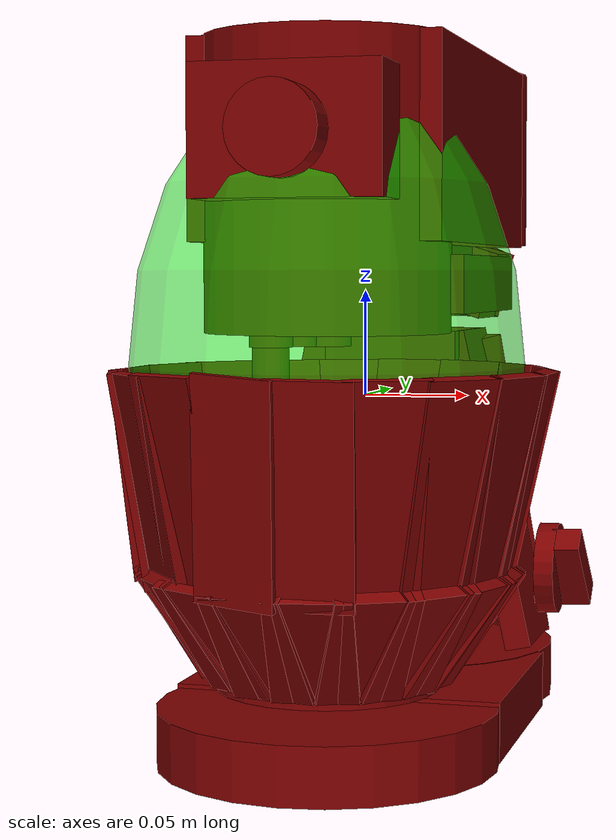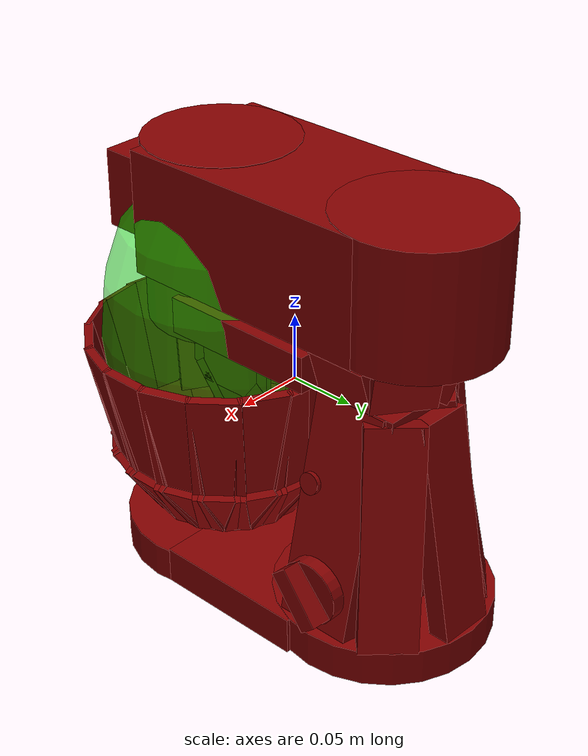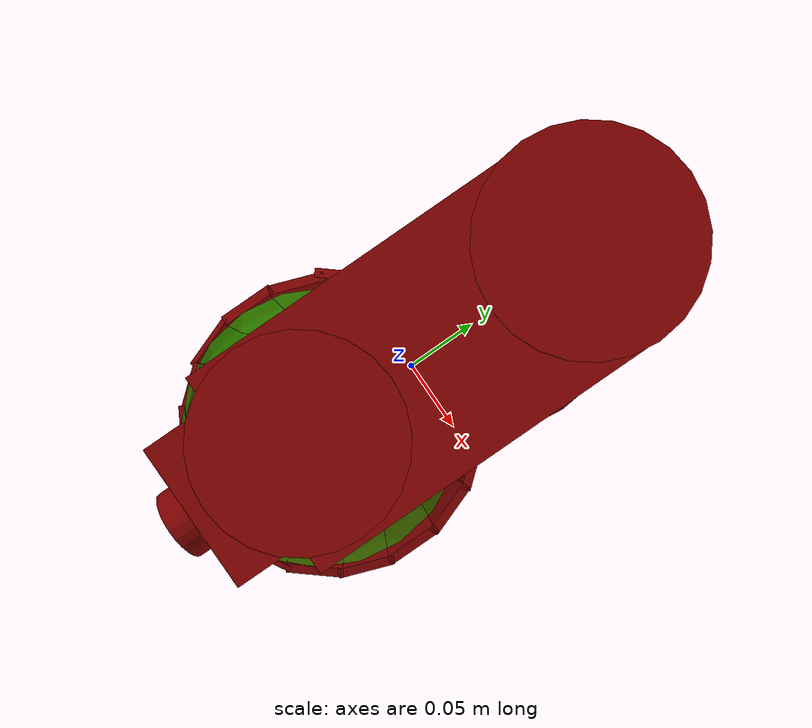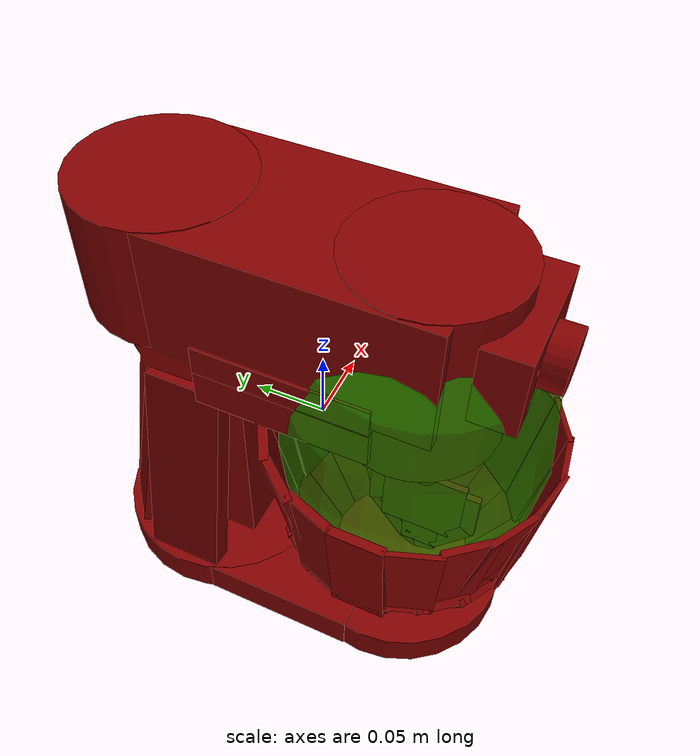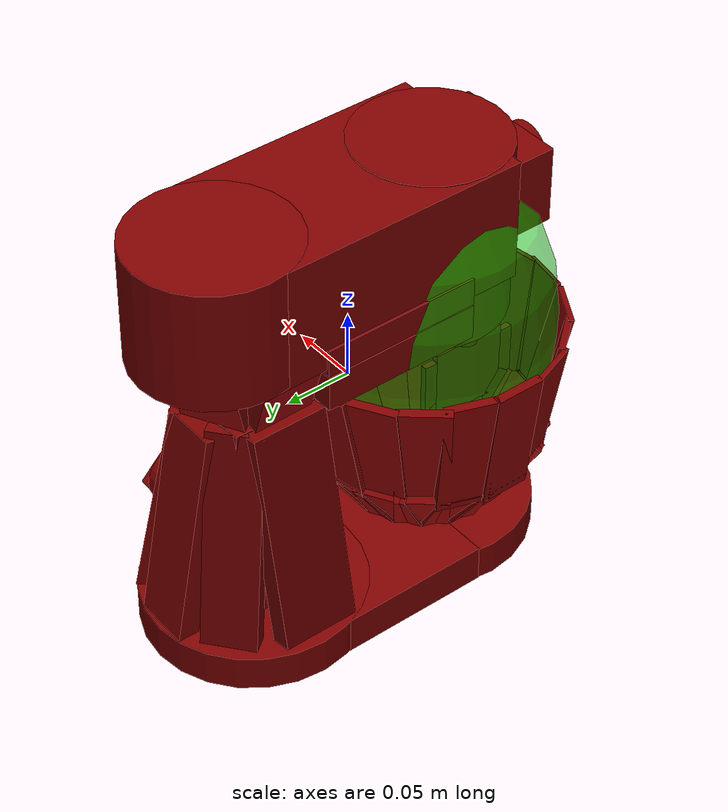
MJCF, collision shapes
<?xml version='1.0' encoding='UTF-8'?>
<mujoco model="model">
  <option timestep="0.002" gravity="0.0 0.0 -9.81"/>
  <compiler angle="radian"/>
  <asset>
    <mesh file="visuals/blender.obj" name="blender_vis"/>
    <mesh file="visuals/bowl.obj" name="bowl_vis"/>
    <mesh file="visuals/button_head_lock.obj" name="button_head_lock_vis"/>
    <mesh file="visuals/head.obj" name="head_vis"/>
    <mesh file="visuals/knob_speed.obj" name="knob_speed_vis"/>
    <mesh file="visuals/Body001.obj" name="Body001_vis"/>
    <texture file="visuals/T_BC001.png" name="Body001_material" type="2d"/>
    <material name="Body001_material" rgba="1 1 1 1.0" texture="Body001_material" shininess="0.141421377658844" specular="1"/>
    <texture file="visuals/T_BC001.png" name="bowl_material" type="2d"/>
    <material name="bowl_material" rgba="1 1 1 1.0" texture="bowl_material" shininess="0.141421377658844" specular="2"/>
    <texture file="visuals/T_BC001.png" name="button_head_lock_material" type="2d"/>
    <material name="button_head_lock_material" rgba="1 1 1 1.0" texture="button_head_lock_material" shininess="0.141421377658844" specular="0.3103448502657381"/>
    <texture file="visuals/T_BC001.png" name="head_material" type="2d"/>
    <material name="head_material" rgba="1 1 1 1.0" texture="head_material" shininess="0.141421377658844" specular="1"/>
    <texture file="visuals/T_BC001.png" name="blender_material" type="2d"/>
    <material name="blender_material" rgba="1 1 1 1.0" texture="blender_material" shininess="0.141421377658844" specular="3"/>
    <texture file="visuals/T_BC001.png" name="knob_speed_material" type="2d"/>
    <material name="knob_speed_material" rgba="1 1 1 1.0" texture="knob_speed_material" shininess="0.141421377658844" specular="0.3103448502657381"/>
  </asset>
  <default>
    <default class="visual">
      <geom conaffinity="0" contype="0" group="1" type="mesh"/>
    </default>
    <default class="collision">
      <geom group="0" rgba="0.5 0 0 0.5"/>
    </default>
    <default class="spawn">
      <geom group="0" rgba="1 1 1 0.5" contype="0" conaffinity="0"/>
      <site group="0" rgba="1 1 1 0.5"/>
    </default>
    <default class="region">
      <geom group="1" conaffinity="0" contype="0" rgba="0 1 0 0"/>
    </default>
  </default>
  <worldbody>
    <body>
      <body name="object">
        <geom mesh="Body001_vis" type="mesh" solimp="0.998 0.998 0.001" solref="0.001 1" friction="0.95 0.3 0.1" class="visual" material="Body001_material"/>
        <geom type="cylinder" pos="-2.965977182611823e-05 -0.06684844195842743 -0.1500251591205597" size="0.07800706475973129 0.01318493764847517" quat="1.0 0.0 0.0 0.0" class="collision"/>
        <geom type="cylinder" pos="-0.002389046363532543 0.08387935161590576 -0.14801867306232452" size="0.07943037897348404 0.013425509445369244" quat="1.0 0.0 0.0 0.0" class="collision"/>
        <geom type="box" pos="-0.00032650859793648124 0.004917993675917387 -0.14880700409412384" size="0.07702770084142685 0.05912737920880318 0.013953768648207188" quat="1.0 0.0 0.0 0.0" class="collision"/>
        <geom type="box" pos="0.0005481625557877123 0.08040105551481247 -0.05222691223025322" size="0.03387362137436867 0.03569815307855606 0.0817524641752243" quat="1.0 0.0 0.0 0.0" class="collision"/>
        <geom type="box" pos="0.047999922186136246 0.08232957124710083 -0.05177780240774155" size="0.006538844667375088 0.0284084752202034 0.08204905688762665" quat="0.9942047595977783 0.0 -0.1075030118227005 0.0" class="collision"/>
        <geom type="box" pos="-0.03487230837345123 0.1214093342423439 -0.052567124366760254" size="0.007892224006354809 0.019647125154733658 0.08175291121006012" quat="0.8977483510971069 0.04135076701641083 0.08289728313684464 -0.4306577444076538" class="collision"/>
        <geom type="box" pos="-0.000611632305663079 0.13742980360984802 -0.05705738812685013" size="0.007801813073456287 0.021083414554595947 0.0817185565829277" quat="0.6972964406013489 0.06290378421545029 0.06656637042760849 -0.7109076380729675" class="collision"/>
        <geom type="box" pos="-0.05311793461441994 0.08232957124710083 -0.05120164155960083" size="0.007892224937677383 0.0284084752202034 0.08175291121006012" quat="0.9954656958580017 0.0 0.09512124955654144 0.0" class="collision"/>
        <geom type="box" pos="0.03852395340800285 0.12175070494413376 -0.05593735724687576" size="0.007801811210811138 0.02074163220822811 0.08171853423118591" quat="0.38455402851104736 0.0907943993806839 0.026380909606814384 -0.9182475805282593" class="collision"/>
        <body name="bowl">
          <geom mesh="bowl_vis" type="mesh" solimp="0.998 0.998 0.001" solref="0.001 1" friction="0.95 0.3 0.1" class="visual" material="bowl_material"/>
          <geom type="cylinder" pos="-6.622355431318283e-05 -0.06656627357006073 -0.12455786764621735" size="0.050764307379722595 0.0038426481187343597" quat="1.0 0.0 0.0 0.0" class="collision"/>
          <geom type="box" pos="-0.06771234422922134 -0.0665675550699234 -0.09843983501195908" size="0.0031762332655489445 0.019008275121450424 0.029454151168465614" quat="0.9554689526557922 -6.597572660448688e-15 -0.2950916588306427 -3.964817096857587e-08" class="collision"/>
          <geom type="box" pos="-0.08904267102479935 -0.06656627357006073 -0.03320644050836563" size="0.0031654690392315388 0.018913358449935913 0.048479266464710236" quat="0.9980469942092896 6.768285931713081e-10 -0.062467340379953384 -1.4584673913020652e-08" class="collision"/>
          <geom type="box" pos="-0.06362222135066986 -0.04337133839726448 -0.09843983501195908" size="0.0031762332655489445 0.019008275121450424 0.029454151168465614" quat="0.9409531950950623 -0.05124218016862869 -0.29060855507850647 -0.1659155637025833" class="collision"/>
          <geom type="box" pos="-0.08262677490711212 -0.03402240201830864 -0.03312843292951584" size="0.003165468806400895 0.018913360312581062 0.048479270190000534" quat="0.9828017354011536 -0.011077865958213806 -0.06282565742731094 -0.17329439520835876" class="collision"/>
          <geom type="box" pos="-0.05184519290924072 -0.022972922772169113 -0.09843983501195908" size="0.0031762332655489445 0.019008275121450424 0.029454151168465614" quat="0.8978471159934998 -0.10092726349830627 -0.27729538083076477 -0.3267896771430969" class="collision"/>
          <geom type="box" pos="-0.06732411682605743 -0.009795170277357101 -0.032737407833337784" size="0.0031654685735702515 0.018913358449935913 0.04847926273941994" quat="0.9341279864311218 -0.03716619685292244 -0.1021132692694664 -0.33999478816986084" class="collision"/>
          <geom type="box" pos="-0.033801741898059845 -0.007832664996385574 -0.09843983501195908" size="0.0031762332655489445 0.019008275121450424 0.029454149305820465" quat="0.8274604082107544 -0.14754579961299896 -0.25555679202079773 -0.4777345061302185" class="collision"/>
          <geom type="box" pos="-0.04410726577043533 0.01137281209230423 -0.03273741528391838" size="0.0031654690392315388 0.018913356587290764 0.048479270190000534" quat="0.86089688539505 -0.0543333999812603 -0.0941082090139389 -0.4970392882823944" class="collision"/>
          <geom type="box" pos="-0.011668168008327484 0.00022330298088490963 -0.09843983501195908" size="0.0031762332655489445 0.019008278846740723 0.029454149305820465" quat="0.7319316267967224 -0.18968118727207184 -0.22605328261852264 -0.6141636967658997" class="collision"/>
          <geom type="box" pos="-0.016078632324934006 0.024244502186775208 -0.032737407833337784" size="0.0031654690392315388 0.018913360312581062 0.04847926273941994" quat="0.7615081071853638 -0.06984958797693253 -0.08324350416660309 -0.6389812231063843" class="collision"/>
          <geom type="box" pos="0.01188588235527277 0.00022330996580421925 -0.09843983501195908" size="0.003176233498379588 0.019008276984095573 0.029454151168465614" quat="0.6141636371612549 -0.22605326771736145 -0.18968121707439423 -0.7319316864013672" class="collision"/>
          <geom type="box" pos="0.015450360253453255 0.02143275924026966 -0.03210565075278282" size="0.003165468340739608 0.018913358449935913 0.04847926273941994" quat="0.6389811635017395 -0.08324349671602249 -0.06984958052635193 -0.7615081071853638" class="collision"/>
          <geom type="box" pos="0.03401946276426315 -0.00783265009522438 -0.09843983501195908" size="0.0031762332655489445 0.019008275121450424 0.029454149305820465" quat="0.4777344763278961 -0.25555679202079773 -0.14754579961299896 -0.8274604082107544" class="collision"/>
          <geom type="box" pos="0.04411424696445465 0.00995663646608591 -0.03188536316156387" size="0.003165468806400895 0.018913358449935913 0.048479266464710236" quat="0.497038871049881 -0.0941082090139389 -0.054333336651325226 -0.8608971238136292" class="collision"/>
          <geom type="box" pos="0.05206291377544403 -0.02297290787100792 -0.09843983501195908" size="0.0031762332655489445 0.019008275121450424 0.029454151168465614" quat="0.32678961753845215 -0.27729547023773193 -0.10092729330062866 -0.8978471159934998" class="collision"/>
          <geom type="box" pos="0.06830538064241409 -0.00919561367481947 -0.032082702964544296" size="0.0031654692720621824 0.018913358449935913 0.04847926273941994" quat="0.3399949073791504 -0.1021132543683052 -0.03716619685292244 -0.934127926826477" class="collision"/>
          <geom type="box" pos="0.06383994966745377 -0.04337130859494209 -0.09843983501195908" size="0.0031762332655489445 0.019008275121450424 0.029454153031110764" quat="0.16591550409793854 -0.2906084358692169 -0.0512421615421772 -0.940953254699707" class="collision"/>
          <geom type="box" pos="0.08328482508659363 -0.036228932440280914 -0.03196045383810997" size="0.003165468806400895 0.018913358449935913 0.04847926273941994" quat="0.17261990904808044 -0.10701578110456467 -0.018869776278734207 -0.9789759516716003" class="collision"/>
          <geom type="box" pos="0.06793007999658585 -0.06656752526760101 -0.09843983501195908" size="0.0031762332655489445 0.019008275121450424 0.029454149305820465" quat="7.631651754991253e-08 -0.2950914800167084 -3.581508423167179e-08 -0.955469012260437" class="collision"/>
          <geom type="box" pos="0.08812575787305832 -0.06656625121831894 -0.03184797614812851" size="0.003165468806400895 0.018913358449935913 0.048479266464710236" quat="1.9337761614224291e-07 0.10866641253232956 -1.9542824247764656e-08 0.9940782785415649" class="collision"/>
          <geom type="box" pos="0.06383995711803436 -0.08976376056671143 -0.09843983501195908" size="0.003176232799887657 0.019008273258805275 0.029454153031110764" quat="0.16591569781303406 0.2906085252761841 -0.05124218016862869 0.9409531950950623" class="collision"/>
          <geom type="box" pos="0.08308430761098862 -0.09683055430650711 -0.03191323205828667" size="0.003165468806400895 0.018913354724645615 0.04847926273941994" quat="0.17262002825737 0.10701579600572586 -0.018869787454605103 0.9789759516716003" class="collision"/>
          <geom type="box" pos="0.052062928676605225 -0.1101621761918068 -0.09843983501195908" size="0.0031762332655489445 0.019008275121450424 0.029454149305820465" quat="0.32678985595703125 0.2772953510284424 -0.10092733055353165 0.897847056388855" class="collision"/>
          <geom type="box" pos="0.06734208762645721 -0.12312854081392288 -0.03180444613099098" size="0.0031654685735702515 0.018913358449935913 0.048479270190000534" quat="0.3399949073791504 0.10211323946714401 -0.03716619312763214 0.934127926826477" class="collision"/>
          <geom type="box" pos="0.03401947766542435 -0.12530243396759033 -0.09843983501195908" size="0.003176232799887657 0.019008275121450424 0.029454151168465614" quat="0.4777345657348633 0.2555568218231201 -0.14754582941532135 0.8274603486061096" class="collision"/>
          <geom type="box" pos="0.044242098927497864 -0.1433105319738388 -0.031733930110931396" size="0.0019278463441878557 0.018913358449935913 0.048479266464710236" quat="0.49724477529525757 0.09078503400087357 -0.052414678037166595 0.8612539768218994" class="collision"/>
          <geom type="box" pos="0.011885909363627434 -0.13335838913917542 -0.09843983501195908" size="0.003176233498379588 0.019008275121450424 0.029454151168465614" quat="0.6141636371612549 0.22605326771736145 -0.18968120217323303 0.7319316864013672" class="collision"/>
          <geom type="box" pos="0.017114756628870964 -0.15520541369915009 -0.03216535225510597" size="0.002035936340689659 0.018913360312581062 0.04847925901412964" quat="0.6589561700820923 0.06770002841949463 -0.04819619283080101 0.7475764751434326" class="collision"/>
          <geom type="box" pos="-0.011668173596262932 -0.13335838913917542 -0.09843983501195908" size="0.003176233498379588 0.019008273258805275 0.029454149305820465" quat="0.7319318056106567 0.18968117237091064 -0.22605329751968384 0.6141634583473206" class="collision"/>
          <geom type="box" pos="-0.014597950503230095 -0.15666788816452026 -0.03128327056765556" size="0.0013950418215245008 0.018913354724645615 0.04847926273941994" quat="0.7795469760894775 0.06233185529708862 -0.027360346168279648 0.6226336359977722" class="collision"/>
          <geom type="box" pos="-0.033801741898059845 -0.12530241906642914 -0.09843983501195908" size="0.002418010961264372 0.019008273258805275 0.029454151168465614" quat="0.827460527420044 0.1475457102060318 -0.2555568516254425 0.477734237909317" class="collision"/>
          <geom type="box" pos="-0.04292100667953491 -0.14079296588897705 -0.0312986895442009" size="0.0021197032183408737 0.018913356587290764 0.04847926273941994" quat="0.8608969449996948 0.05433332547545433 -0.09410806745290756 0.49703922867774963" class="collision"/>
          <geom type="box" pos="-0.05082844942808151 -0.10930904000997543 -0.09753355383872986" size="0.0031762332655489445 0.019008275121450424 0.029454151168465614" quat="0.8978471755981445 0.10092725604772568 -0.27729538083076477 0.32678958773612976" class="collision"/>
          <geom type="box" pos="-0.06317687034606934 -0.12458422780036926 -0.032323747873306274" size="0.002410450717434287 0.018913358449935913 0.04847925901412964" quat="0.9356999397277832 0.03149515762925148 -0.08653219044208527 0.3405669927597046" class="collision"/>
          <geom type="box" pos="-0.06316154450178146 -0.08959610760211945 -0.09810509532690048" size="0.002055129036307335 0.019008273258805275 0.029454156756401062" quat="0.9409531950950623 0.051242150366306305 -0.29060864448547363 0.16591550409793854" class="collision"/>
          <geom type="box" pos="-0.08212549239397049 -0.09892771393060684 -0.03308706358075142" size="0.0016526804538443685 0.018913360312581062 0.048479266464710236" quat="0.9814785718917847 0.01426627766340971 -0.08090804517269135 0.17306114733219147" class="collision"/>
          <geom name="reg_bowl" type="ellipsoid" pos="-6.622076034545898e-05 -0.06642511487007141 0.017167039215564728" size="0.08899103105068207 0.09068682044744492 0.1369498372077942" rgba="0 1 0 0.5" class="region"/>
        </body>
        <body name="button_head_lock">
          <joint axis="-0.9848079085350037 2.3331166332241082e-08 -0.1736481785774231" pos="0.05649111792445183 0.06826356053352356 -0.02655242569744587" limited="true" name="button_head_lock_joint" range="0.0 0.003" type="slide" damping="1" frictionloss="1" armature=".01" stiffness="0.5" springref="-0.5"/>
          <geom mesh="button_head_lock_vis" type="mesh" solimp="0.998 0.998 0.001" solref="0.001 1" friction="0.95 0.3 0.1" class="visual" material="button_head_lock_material"/>
          <geom class="collision" type="cylinder" pos="0.058562248945236206 0.06816801428794861 -0.02646893635392189" size="0.007802916690707207 0.0018008091719821095" quat="0.7660444378852844 8.280346186495535e-09 0.6427876353263855 -8.280347074673955e-09" name="button_head_lock_main"/>
        </body>
        <body name="head">
          <joint axis="-1.0 0.0 0.0" pos="4.768371297814156e-08 0.13392604887485504 0.029161512851715088" limited="true" name="head_joint" range="0.0 1.5707963267948966" type="hinge" damping="1" frictionloss="1" armature=".01" stiffness="0.05"/>
          <geom mesh="head_vis" type="mesh" solimp="0.998 0.998 0.001" solref="0.001 1" friction="0.95 0.3 0.1" class="visual" material="head_material"/>
          <geom type="box" pos="0.0005724122747778893 0.003330816514790058 0.1171264722943306" size="0.05756834149360657 0.09693281352519989 0.04504117742180824" quat="1.0 0.0 0.0 0.0" class="collision"/>
          <geom type="cylinder" pos="-2.9659830033779144e-05 0.10533460974693298 0.11810025572776794" size="0.05888476222753525 0.044684380292892456" quat="1.0 0.0 0.0 0.0" class="collision"/>
          <geom type="cylinder" pos="-2.9659830033779144e-05 -0.06684844195842743 0.09730394929647446" size="0.05546166002750397 0.06557430326938629" quat="1.0 0.0 0.0 0.0" class="collision"/>
          <geom type="box" pos="0.0005724122747778893 0.0022604581899940968 0.05343589186668396" size="0.05951599404215813 0.05912737920880318 0.013261097483336926" quat="1.0 0.0 0.0 0.0" class="collision"/>
          <geom type="box" pos="-0.009393344633281231 0.002260460751131177 0.07779663801193237" size="0.049417585134506226 0.05912714824080467 0.010310223326086998" quat="1.0 0.0 0.0 0.0" class="collision"/>
          <geom type="box" pos="0.0005724122747778893 -0.12096917629241943 0.11764437705278397" size="0.04213531315326691 0.01460894662886858 0.028308404609560966" quat="1.0 0.0 0.0 0.0" class="collision"/>
          <geom type="cylinder" pos="-2.9659830033779144e-05 -0.14331141114234924 0.11712029576301575" size="0.02004116401076317 0.007942813448607922" quat="0.7071068286895752 -0.7071067690849304 -1.5700922994638892e-16 5.926933650839829e-24" class="collision"/>
          <geom type="box" pos="0.0005724122747778893 0.08141055703163147 0.05414300784468651" size="0.03236949443817139 0.030743412673473358 0.017058735713362694" quat="1.0 0.0 0.0 0.0" class="collision"/>
          <geom type="box" pos="0.04109127074480057 0.08265221118927002 0.05414301156997681" size="0.007447761483490467 0.022549008950591087 0.017058733850717545" quat="0.9883102178573608 0.0 0.1524564027786255 0.0" class="collision"/>
          <geom type="box" pos="0.025321027263998985 0.11667884886264801 0.05414301156997681" size="0.007447761949151754 0.022549008950591087 0.017058733850717545" quat="0.8785291910171509 -0.069834403693676 0.13552159070968628 0.452706903219223" class="collision"/>
          <geom type="box" pos="-0.01732705347239971 0.12136368453502655 0.05414301156997681" size="0.007447761483490467 0.022549008950591087 0.017058733850717545" quat="0.5110110640525818 -0.1304953396320343 0.07882840186357498 0.8459460735321045" class="collision"/>
          <geom type="box" pos="-0.04073400795459747 0.08540646731853485 0.05414301156997681" size="0.007447761483490467 0.022549008950591087 0.017058733850717545" quat="0.008073309436440468 0.15245124697685242 0.0012453856179490685 -0.9882772564888" class="collision"/>
          <body name="blender">
            <joint axis="0.0 0.0 1.0" pos="-9.578745812177658e-05 -0.0628768801689148 -0.02422950603067875" limited="false" name="blender_joint" range="0 360" type="hinge" damping="1" frictionloss="1" armature=".01" stiffness="0.05"/>
            <geom mesh="blender_vis" type="mesh" solimp="0.998 0.998 0.001" solref="0.001 1" friction="0.95 0.3 0.1" class="visual" material="blender_material"/>
            <geom type="cylinder" pos="-0.00030484888702630997 -0.06268774718046188 0.029006564989686012" size="0.009712260216474533 0.003362552495673299" quat="1.0 0.0 0.0 0.0" class="collision"/>
            <geom type="cylinder" pos="-0.021257733926177025 -0.08413597196340561 0.029006564989686012" size="0.009712260216474533 0.003362552495673299" quat="1.0 0.0 0.0 0.0" class="collision"/>
            <geom type="cylinder" pos="-0.01080605760216713 -0.07353569567203522 0.029006564989686012" size="0.007175337988883257 0.0032650581561028957" quat="1.0 0.0 0.0 0.0" class="collision"/>
            <geom type="cylinder" pos="-0.021257733926177025 -0.08413597196340561 0.01298321783542633" size="0.008255471475422382 0.012591256760060787" quat="1.0 0.0 0.0 0.0" class="collision"/>
            <geom type="box" pos="-0.022045010700821877 -0.08485414832830429 -0.027122756466269493" size="0.0023830807767808437 0.027996093034744263 0.027996093034744263" quat="1.0 0.0 0.0 0.0" class="collision"/>
            <geom type="box" pos="-0.022045010700821877 -0.08577857166528702 -0.0642024502158165" size="0.0023830807767808437 0.012887472286820412 0.009464617818593979" quat="1.0 0.0 0.0 0.0" class="collision"/>
            <geom type="box" pos="-0.022045010700821877 -0.1175171509385109 -0.02352777123451233" size="0.0023830807767808437 0.005054674111306667 0.018968069925904274" quat="1.0 0.0 0.0 0.0" class="collision"/>
            <geom type="box" pos="-0.022045010700821877 -0.05208843946456909 -0.02352777123451233" size="0.0023830807767808437 0.005054674111306667 0.01896805316209793" quat="1.0 0.0 0.0 0.0" class="collision"/>
            <geom type="box" pos="-0.022045010700821877 -0.06431139260530472 -0.05526634305715561" size="0.0023830807767808437 0.005054674111306667 0.018968038260936737" quat="0.9494823217391968 -0.3138205111026764 -6.968215802261008e-17 -1.4342966426810758e-23" class="collision"/>
            <geom type="box" pos="-0.022045010700821877 -0.10549964010715485 -0.055574484169483185" size="0.0023830807767808437 0.005054674111306667 0.018968038260936737" quat="0.9449061155319214 0.3273414969444275 7.268441336459375e-17 -4.43388383122925e-24" class="collision"/>
            <geom type="box" pos="-0.022045010700821877 -0.08937356621026993 -0.07385754585266113" size="0.0023830807767808437 0.00505295442417264 0.0070123206824064255" quat="0.8190916180610657 0.5736627578735352 1.27378720432233e-16 -3.3528994497653926e-24" class="collision"/>
            <geom type="box" pos="-0.022045010700821877 -0.08012932538986206 -0.0730358362197876" size="0.0023830807767808437 0.005052954889833927 0.0070123206824064255" quat="0.4754977226257324 0.8797169327735901 1.9533639878357214e-16 -1.2614806869590824e-24" class="collision"/>
          </body>
        </body>
        <body name="knob_speed">
          <joint axis="-1.0 0.0 0.0" pos="0.08242038637399673 0.08712659031152725 -0.09473500400781631" limited="true" name="knob_speed_joint" range="0.0 4.537856055185257" type="hinge" damping="0.05" armature="0.001"/>
          <geom mesh="knob_speed_vis" type="mesh" solimp="0.998 0.998 0.001" solref="0.001 1" friction="0.95 0.3 0.1" class="visual" material="knob_speed_material"/>
          <geom type="cylinder" pos="0.0763949453830719 0.0871487706899643 -0.09482471644878387" size="0.023344945162534714 0.004945175722241402" quat="0.70710688829422 -4.7503014855010406e-08 0.7071066498756409 4.750300064415569e-08" class="collision"/>
          <geom class="collision" type="box" pos="0.08767189085483551 0.08672196418046951 -0.09414073824882507" size="0.007575244177132845 0.007181792054325342 0.021763185039162636" quat="0.9359717965126038 0.3510632812976837 -0.024972474202513695 -0.009366643615067005" name="knob_speed_main"/>
        </body>
        <geom class="region" name="reg_main" type="box" pos="-0.00013239122927188873 0.006645120680332184 0.0" size="0.07891182398796082 0.1593930253982544 0.163137970328331"/>
      </body>
    </body>
  </worldbody>
  <actuator>
    <motor name="button_head_lock_joint_actuator" joint="button_head_lock_joint" gear="0.3"/>
    <motor name="head_joint_actuator" joint="head_joint" gear="50"/>
    <motor name="knob_speed_joint_actuator" joint="knob_speed_joint" gear="10"/>
    <motor name="blender_joint_actuator" joint="blender_joint" gear="10"/>
  </actuator>
</mujoco>
